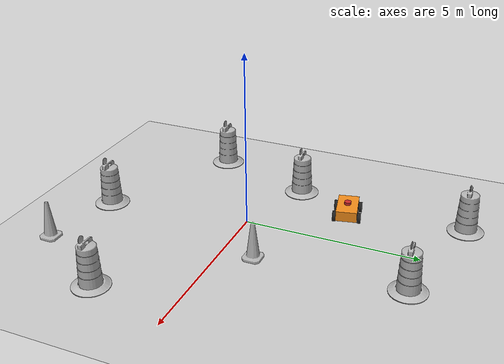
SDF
<sdf version="1.7">
 <world name="default">
  <light name="sun" type="directional">
   <pose>0 0 10 0 -0 0</pose>
   <diffuse>0.8 0.8 0.8 1</diffuse>
   <specular>0.2 0.2 0.2 1</specular>
   <attenuation>
    <range>1000</range>
    <constant>0.9</constant>
    <linear>0.01</linear>
    <quadratic>0.001</quadratic>
   </attenuation>
   <direction>-0.5 0.1 -0.9</direction>
   <spot><inner_angle>0</inner_angle><outer_angle>0</outer_angle><falloff>0</falloff></spot>
  </light>
  <model name="ground_plane">
   <static>1</static>
   <link name="link">
    <collision name="collision">
     <geometry><plane><normal>0 0 1</normal><size>100 100</size></plane></geometry>
     <surface><friction><ode><mu>100</mu><mu2>50</mu2></ode></friction></surface>
    </collision>
    <visual name="visual">
     <cast_shadows>0</cast_shadows>
     <geometry><plane><normal>0 0 1</normal><size>100 100</size></plane></geometry>
     <material>
      <script><uri>file://media/materials/scripts/gazebo.material</uri><name>Gazebo/Grey</name></script>
     </material>
    </visual>
   </link>
  </model>
  <gravity>0 0 -9.8</gravity>
  <magnetic_field>6e-06 2.3e-05 -4.2e-05</magnetic_field>
  <atmosphere type="adiabatic"/>
  <physics type="ode">
   <max_step_size>0.001</max_step_size>
   <real_time_factor>1</real_time_factor>
   <real_time_update_rate>1000</real_time_update_rate>
  </physics>
  <scene><ambient>0.4 0.4 0.4 1</ambient><background>0.7 0.7 0.7 1</background><shadows>1</shadows></scene>
  <audio><device>default</device></audio>
  <spherical_coordinates>
   <surface_model>EARTH_WGS84</surface_model>
   <latitude_deg>0</latitude_deg>
   <longitude_deg>0</longitude_deg>
   <elevation>0</elevation>
   <heading_deg>0</heading_deg>
  </spherical_coordinates>
  <model name="diff_drive_robo">
   <link name="base_link">
    <inertial>
     <pose>0 0 3.9e-05 0 -0 0</pose>
     <mass>487.9</mass>
     <inertia><ixx>18.2962</ixx><ixy>0</ixy><ixz>0</ixz><iyy>44.3122</iyy><iyz>0</iyz><izz>55.2841</izz></inertia>
    </inertial>
    <collision name="base_link_fixed_joint_lump__chassis_collision">
     <geometry><box><size>1 0.6 0.3</size></box></geometry>
     <surface><friction><ode><mu>0.2</mu><mu2>0.2</mu2></ode></friction></surface>
    </collision>
    <collision name="base_link_fixed_joint_lump__lidar_collision_1">
     <pose>0 0 0.19 0 -0 0</pose>
     <geometry><cylinder><length>0.08</length><radius>0.1</radius></cylinder></geometry>
    </collision>
    <visual name="base_link_fixed_joint_lump__chassis_visual">
     <geometry><box><size>1 0.6 0.3</size></box></geometry>
     <material>
      <script><name>Gazebo/Orange</name><uri>file://media/materials/scripts/gazebo.material</uri></script>
     </material>
    </visual>
    <visual name="base_link_fixed_joint_lump__lidar_visual_1">
     <pose>0 0 0.19 0 -0 0</pose>
     <geometry><cylinder><length>0.08</length><radius>0.1</radius></cylinder></geometry>
     <material>
      <script><name>Gazebo/Red</name><uri>file://media/materials/scripts/gazebo.material</uri></script>
     </material>
    </visual>
    <sensor name="laser" type="ray">
     <visualize>1</visualize>
     <update_rate>10</update_rate>
     <ray>
      <scan>
       <horizontal>
        <samples>360</samples>
        <resolution>1</resolution>
        <min_angle>-3.14</min_angle>
        <max_angle>3.14</max_angle>
       </horizontal>
       <vertical><samples>1</samples><min_angle>0</min_angle><max_angle>0</max_angle></vertical>
      </scan>
      <range><min>0.3</min><max>12</max><resolution>0.01</resolution></range>
     </ray>
     <plugin name="laser_controller" filename="libgazebo_ros_ray_sensor.so">
      <ros><argument>~/out:=scan</argument></ros>
      <output_type>sensor_msgs/LaserScan</output_type>
      <frame_name>lidar</frame_name>
     </plugin>
     <pose>0 0 0.19 0 -0 0</pose>
    </sensor>
   </link>
   <joint name="back_left_wheel_joint" type="revolute">
    <pose relative_to="base_link">-0.32 0.35 -0.1 0 -0 0</pose>
    <parent>base_link</parent>
    <child>back_left_wheel</child>
    <axis>
     <xyz>0 1 0</xyz>
     <limit><lower>-1e+16</lower><upper>1e+16</upper></limit>
     <dynamics><spring_reference>0</spring_reference><spring_stiffness>0</spring_stiffness></dynamics>
    </axis>
   </joint>
   <link name="back_left_wheel">
    <pose relative_to="back_left_wheel_joint">0 0 0 0 -0 0</pose>
    <inertial>
     <mass>19.1559</mass>
     <inertia>
      <ixx>0.123715</ixx>
      <ixy>0</ixy>
      <ixz>0</ixz>
      <iyy>0.123715</iyy>
      <iyz>0</iyz>
      <izz>0.215504</izz>
     </inertia>
    </inertial>
    <collision name="back_left_wheel_collision">
     <pose>0 0 0 1.571 -0 0</pose>
     <geometry><cylinder><length>0.1</length><radius>0.15</radius></cylinder></geometry>
     <surface><friction><ode><mu>0.2</mu><mu2>0.2</mu2></ode></friction></surface>
    </collision>
    <visual name="back_left_wheel_visual">
     <pose>0 0 0 1.571 -0 0</pose>
     <geometry><cylinder><length>0.1</length><radius>0.15</radius></cylinder></geometry>
     <material>
      <script><name>Gazebo/Black</name><uri>file://media/materials/scripts/gazebo.material</uri></script>
     </material>
    </visual>
   </link>
   <joint name="back_right_wheel_joint" type="revolute">
    <pose relative_to="base_link">-0.32 -0.35 -0.1 0 -0 0</pose>
    <parent>base_link</parent>
    <child>back_right_wheel</child>
    <axis>
     <xyz>0 1 0</xyz>
     <limit><lower>-1e+16</lower><upper>1e+16</upper></limit>
     <dynamics><spring_reference>0</spring_reference><spring_stiffness>0</spring_stiffness></dynamics>
    </axis>
   </joint>
   <link name="back_right_wheel">
    <pose relative_to="back_right_wheel_joint">0 0 0 0 -0 0</pose>
    <inertial>
     <mass>19.1559</mass>
     <inertia>
      <ixx>0.123715</ixx>
      <ixy>0</ixy>
      <ixz>0</ixz>
      <iyy>0.123715</iyy>
      <iyz>0</iyz>
      <izz>0.215504</izz>
     </inertia>
    </inertial>
    <collision name="back_right_wheel_collision">
     <pose>0 0 0 1.571 -0 0</pose>
     <geometry><cylinder><length>0.1</length><radius>0.15</radius></cylinder></geometry>
     <surface><friction><ode><mu>0.2</mu><mu2>0.2</mu2></ode></friction></surface>
    </collision>
    <visual name="back_right_wheel_visual">
     <pose>0 0 0 1.571 -0 0</pose>
     <geometry><cylinder><length>0.1</length><radius>0.15</radius></cylinder></geometry>
     <material>
      <script><name>Gazebo/Black</name><uri>file://media/materials/scripts/gazebo.material</uri></script>
     </material>
    </visual>
   </link>
   <joint name="front_left_wheel_joint" type="revolute">
    <pose relative_to="base_link">0.32 0.35 -0.1 0 -0 0</pose>
    <parent>base_link</parent>
    <child>front_left_wheel</child>
    <axis>
     <xyz>0 1 0</xyz>
     <limit><lower>-1e+16</lower><upper>1e+16</upper></limit>
     <dynamics><spring_reference>0</spring_reference><spring_stiffness>0</spring_stiffness></dynamics>
    </axis>
   </joint>
   <link name="front_left_wheel">
    <pose relative_to="front_left_wheel_joint">0 0 0 0 -0 0</pose>
    <inertial>
     <mass>19.1559</mass>
     <inertia>
      <ixx>0.123715</ixx>
      <ixy>0</ixy>
      <ixz>0</ixz>
      <iyy>0.123715</iyy>
      <iyz>0</iyz>
      <izz>0.215504</izz>
     </inertia>
    </inertial>
    <collision name="front_left_wheel_collision">
     <pose>0 0 0 1.571 -0 0</pose>
     <geometry><cylinder><length>0.1</length><radius>0.15</radius></cylinder></geometry>
     <surface><friction><ode><mu>0.2</mu><mu2>0.2</mu2></ode></friction></surface>
    </collision>
    <visual name="front_left_wheel_visual">
     <pose>0 0 0 1.571 -0 0</pose>
     <geometry><cylinder><length>0.1</length><radius>0.15</radius></cylinder></geometry>
     <material>
      <script><name>Gazebo/Black</name><uri>file://media/materials/scripts/gazebo.material</uri></script>
     </material>
    </visual>
   </link>
   <joint name="front_right_wheel_joint" type="revolute">
    <pose relative_to="base_link">0.32 -0.35 -0.1 0 -0 0</pose>
    <parent>base_link</parent>
    <child>front_right_wheel</child>
    <axis>
     <xyz>0 1 0</xyz>
     <limit><lower>-1e+16</lower><upper>1e+16</upper></limit>
     <dynamics><spring_reference>0</spring_reference><spring_stiffness>0</spring_stiffness></dynamics>
    </axis>
   </joint>
   <link name="front_right_wheel">
    <pose relative_to="front_right_wheel_joint">0 0 0 0 -0 0</pose>
    <inertial>
     <mass>19.1559</mass>
     <inertia>
      <ixx>0.123715</ixx>
      <ixy>0</ixy>
      <ixz>0</ixz>
      <iyy>0.123715</iyy>
      <iyz>0</iyz>
      <izz>0.215504</izz>
     </inertia>
    </inertial>
    <collision name="front_right_wheel_collision">
     <pose>0 0 0 1.571 -0 0</pose>
     <geometry><cylinder><length>0.1</length><radius>0.15</radius></cylinder></geometry>
     <surface><friction><ode><mu>0.2</mu><mu2>0.2</mu2></ode></friction></surface>
    </collision>
    <visual name="front_right_wheel_visual">
     <pose>0 0 0 1.571 -0 0</pose>
     <geometry><cylinder><length>0.1</length><radius>0.15</radius></cylinder></geometry>
     <material>
      <script><name>Gazebo/Black</name><uri>file://media/materials/scripts/gazebo.material</uri></script>
     </material>
    </visual>
   </link>
   <static>0</static>
   <plugin name="skid_steer_drive" filename="libgazebo_ros_diff_drive.so">
    <num_wheel_pairs>2</num_wheel_pairs>
    <left_joint>front_left_wheel_joint</left_joint>
    <right_joint>front_right_wheel_joint</right_joint>
    <left_joint>back_left_wheel_joint</left_joint>
    <right_joint>back_right_wheel_joint</right_joint>
    <wheel_separation>0.4</wheel_separation>
    <wheel_separation>0.4</wheel_separation>
    <max_wheel_torque>1000</max_wheel_torque>
    <max_wheel_torque>5</max_wheel_torque>
    <publish_odom>1</publish_odom>
    <publish_odom_tf>1</publish_odom_tf>
    <publish_wheel_tf>1</publish_wheel_tf>
    <odometry_frame>odom</odometry_frame>
    <robot_base_frame>base_link</robot_base_frame>
   </plugin>
   <pose>-1.44712 2.5421 0.250006 4e-06 -2e-06 -2.92712</pose>
  </model>
  <model name="Construction Barrel">
   <link name="link">
    <inertial>
     <pose>0 0 0.4 0 -0 0</pose>
     <mass>500</mass>
     <inertia><ixx>51.2096</ixx><iyy>51.2096</iyy><izz>25</izz><ixy>0</ixy><ixz>0</ixz><iyz>0</iyz></inertia>
    </inertial>
    <collision name="collision">
     <geometry><mesh><uri>model://construction_barrel/meshes/construction_barrel.dae</uri></mesh></geometry>
    </collision>
    <visual name="visual">
     <geometry><mesh><uri>model://construction_barrel/meshes/construction_barrel.dae</uri></mesh></geometry>
    </visual>
   </link>
   <pose>-3.30955 -2.15297 0 0 0 -1.5e-05</pose>
  </model>
  <model name="Construction Barrel_0">
   <link name="link">
    <inertial>
     <pose>0 0 0.4 0 -0 0</pose>
     <mass>500</mass>
     <inertia><ixx>51.2096</ixx><iyy>51.2096</iyy><izz>25</izz><ixy>0</ixy><ixz>0</ixz><iyz>0</iyz></inertia>
    </inertial>
    <collision name="collision">
     <geometry><mesh><uri>model://construction_barrel/meshes/construction_barrel.dae</uri></mesh></geometry>
    </collision>
    <visual name="visual">
     <geometry><mesh><uri>model://construction_barrel/meshes/construction_barrel.dae</uri></mesh></geometry>
    </visual>
   </link>
   <pose>-2.29619 0.824731 -0 1e-06 -1e-06 -1.2e-05</pose>
  </model>
  <model name="Construction Barrel_1">
   <link name="link">
    <inertial>
     <pose>0 0 0.4 0 -0 0</pose>
     <mass>500</mass>
     <inertia><ixx>51.2096</ixx><iyy>51.2096</iyy><izz>25</izz><ixy>0</ixy><ixz>0</ixz><iyz>0</iyz></inertia>
    </inertial>
    <collision name="collision">
     <geometry><mesh><uri>model://construction_barrel/meshes/construction_barrel.dae</uri></mesh></geometry>
    </collision>
    <visual name="visual">
     <geometry><mesh><uri>model://construction_barrel/meshes/construction_barrel.dae</uri></mesh></geometry>
    </visual>
   </link>
   <pose>4.29131 -2.31561 -1e-06 0 5e-06 -1e-05</pose>
  </model>
  <model name="Construction Barrel_2">
   <link name="link">
    <inertial>
     <pose>0 0 0.4 0 -0 0</pose>
     <mass>500</mass>
     <inertia><ixx>51.2096</ixx><iyy>51.2096</iyy><izz>25</izz><ixy>0</ixy><ixz>0</ixz><iyz>0</iyz></inertia>
    </inertial>
    <collision name="collision">
     <geometry><mesh><uri>model://construction_barrel/meshes/construction_barrel.dae</uri></mesh></geometry>
    </collision>
    <visual name="visual">
     <geometry><mesh><uri>model://construction_barrel/meshes/construction_barrel.dae</uri></mesh></geometry>
    </visual>
   </link>
   <pose>1.48609 5.00794 -2e-06 -0 7e-06 -8e-06</pose>
  </model>
  <model name="Construction Cone">
   <link name="link">
    <collision name="collision">
     <geometry>
      <mesh><scale>10 10 10</scale><uri>model://construction_cone/meshes/construction_cone.dae</uri></mesh>
     </geometry>
    </collision>
    <visual name="visual">
     <geometry>
      <mesh><scale>10 10 10</scale><uri>model://construction_cone/meshes/construction_cone.dae</uri></mesh>
     </geometry>
    </visual>
    <inertial>
     <inertia><ixx>1</ixx><ixy>0</ixy><ixz>0</ixz><iyy>1</iyy><iyz>0</iyz><izz>1</izz></inertia>
     <mass>1</mass>
    </inertial>
   </link>
   <pose>2.80348 -4.67142 -0 0 -0 0</pose>
  </model>
  <model name="Construction Barrel_3">
   <link name="link">
    <inertial>
     <pose>0 0 0.4 0 -0 0</pose>
     <mass>500</mass>
     <inertia><ixx>51.2096</ixx><iyy>51.2096</iyy><izz>25</izz><ixy>0</ixy><ixz>0</ixz><iyz>0</iyz></inertia>
    </inertial>
    <collision name="collision">
     <geometry><mesh><uri>model://construction_barrel/meshes/construction_barrel.dae</uri></mesh></geometry>
    </collision>
    <visual name="visual">
     <geometry><mesh><uri>model://construction_barrel/meshes/construction_barrel.dae</uri></mesh></geometry>
    </visual>
   </link>
   <pose>0.513592 -4.18067 1e-06 2e-06 3e-06 -6e-06</pose>
  </model>
  <model name="Construction Barrel_4">
   <link name="link">
    <inertial>
     <pose>0 0 0.4 0 -0 0</pose>
     <mass>500</mass>
     <inertia><ixx>51.2096</ixx><iyy>51.2096</iyy><izz>25</izz><ixy>0</ixy><ixz>0</ixz><iyz>0</iyz></inertia>
    </inertial>
    <collision name="collision">
     <geometry><mesh><uri>model://construction_barrel/meshes/construction_barrel.dae</uri></mesh></geometry>
    </collision>
    <visual name="visual">
     <geometry><mesh><uri>model://construction_barrel/meshes/construction_barrel.dae</uri></mesh></geometry>
    </visual>
   </link>
   <pose>-1.90844 5.84213 0 0 0 -3e-06</pose>
  </model>
  <model name="Construction Cone_0">
   <link name="link">
    <collision name="collision">
     <geometry>
      <mesh><scale>10 10 10</scale><uri>model://construction_cone/meshes/construction_cone.dae</uri></mesh>
     </geometry>
    </collision>
    <visual name="visual">
     <geometry>
      <mesh><scale>10 10 10</scale><uri>model://construction_cone/meshes/construction_cone.dae</uri></mesh>
     </geometry>
    </visual>
    <inertial>
     <inertia><ixx>1</ixx><ixy>0</ixy><ixz>0</ixz><iyy>1</iyy><iyz>0</iyz><izz>1</izz></inertia>
     <mass>1</mass>
    </inertial>
   </link>
   <pose>1.61312 0.9031 -0 0 -1e-06 0</pose>
  </model>
 </world>
</sdf>
